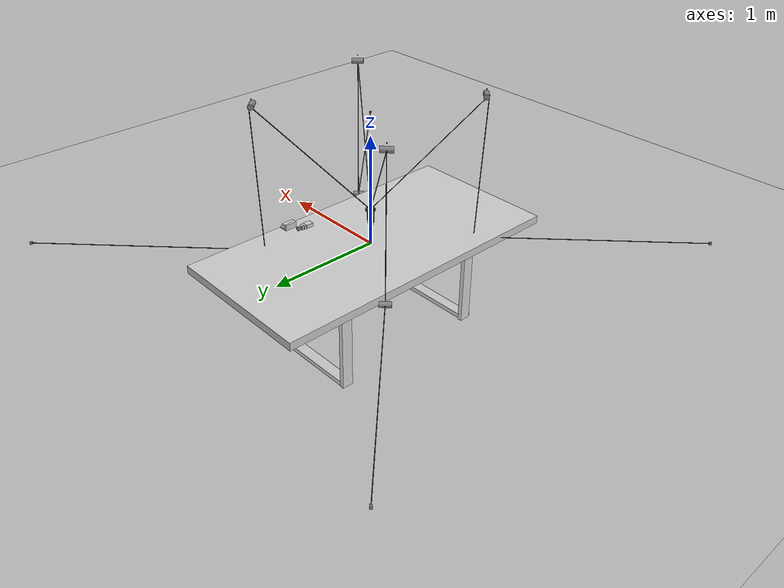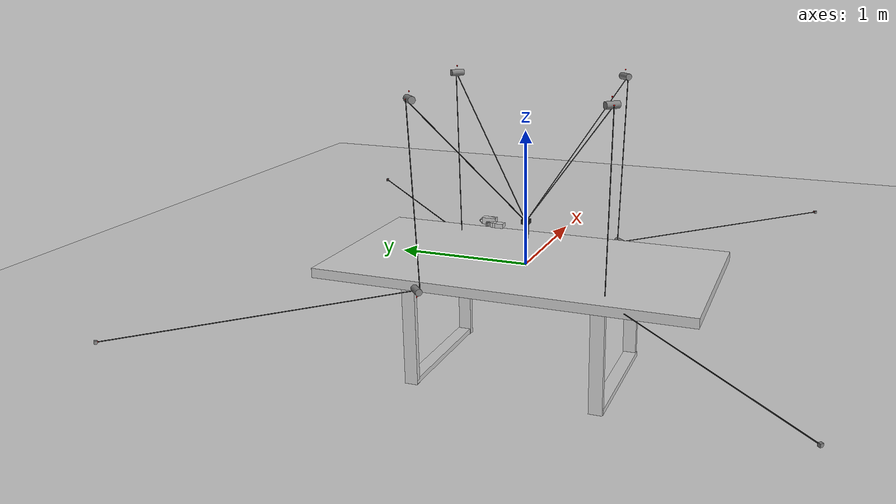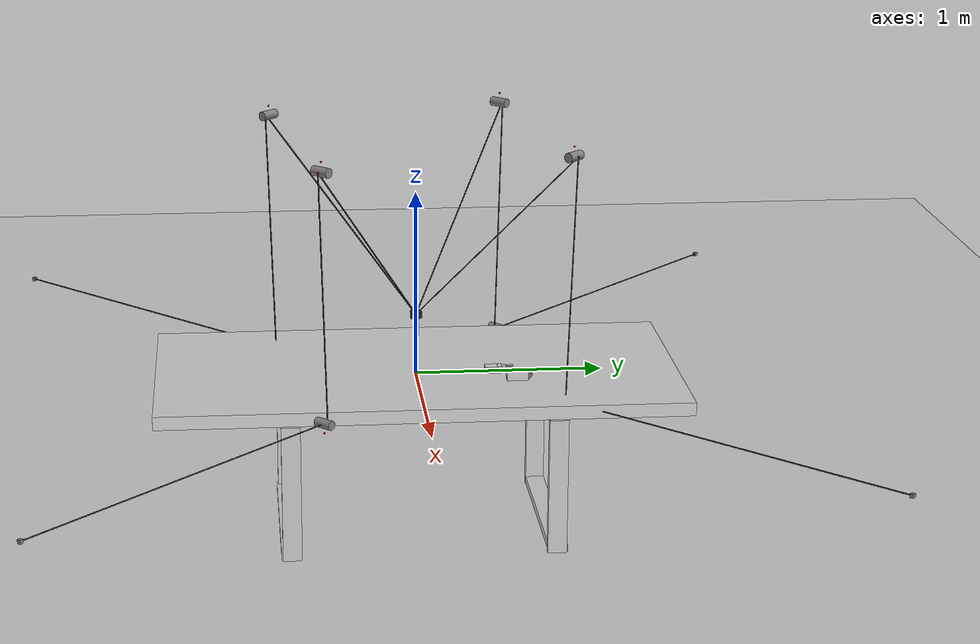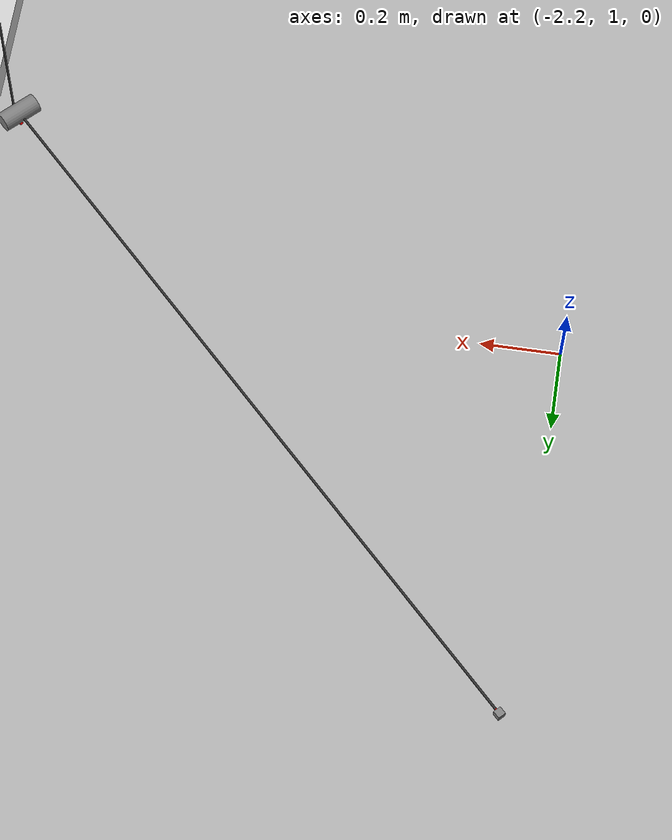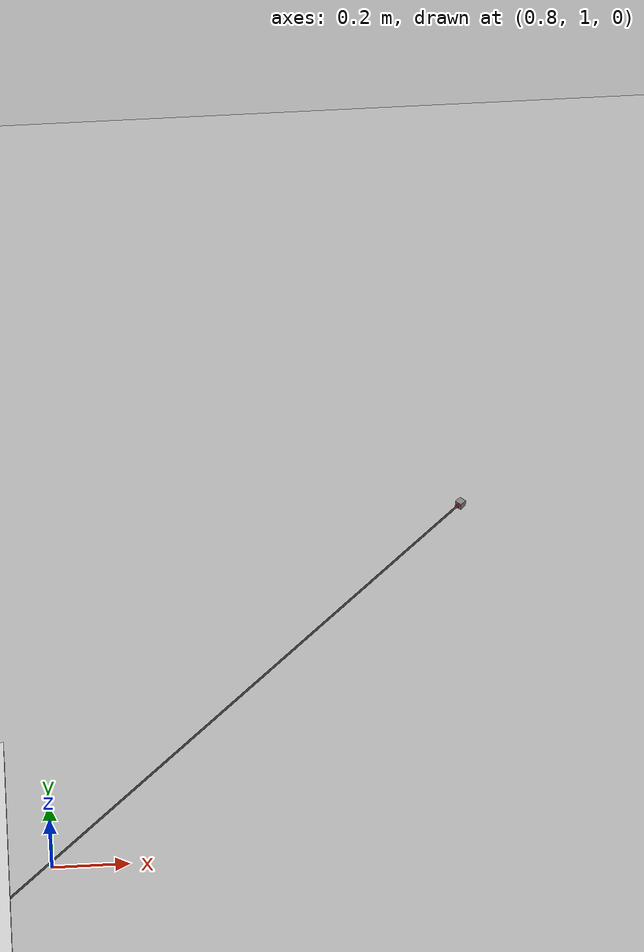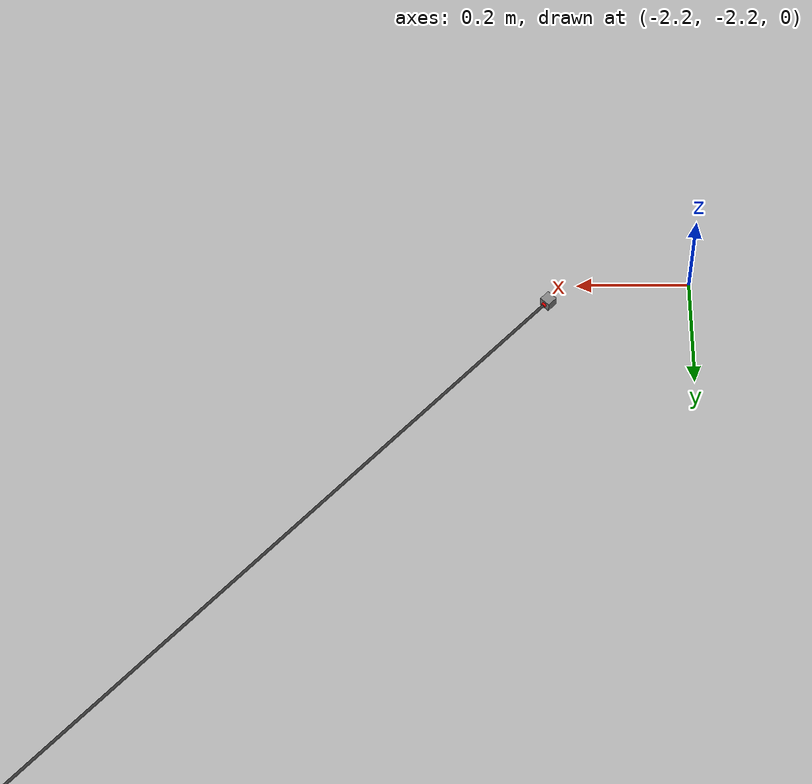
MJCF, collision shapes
<mujoco>
    <compiler autolimits="true"/>

    <!-- Set mesh/texture dirs for the SCENE only -->
    <compiler meshdir="/root/repo/CDPR_Dataset/cdpr_dataset/wrappers" texturedir="/root/repo/CDPR_Dataset/cdpr_dataset/wrappers"/>
    <include file="/root/repo/CDPR_Dataset/cdpr_dataset/wrappers/desk_zshift.xml"/>

    <!-- Reset to neutral (our CDPR uses primitives / absolute includes) -->
    <compiler meshdir="" texturedir=""/>

    <!-- CDPR rig -->
    <include file="/root/repo/CDPR_Dataset/cdpr_dataset/wrappers/cdpr_ee_override.xml"/>

    <!-- Placed LIBERO objects (assets already absolute) -->
    <include file="/root/repo/CDPR_Dataset/cdpr_dataset/wrappers/placed_0_ketchup.xml"/>
<include file="/root/repo/CDPR_Dataset/cdpr_dataset/wrappers/placed_1_milk.xml"/>
<include file="/root/repo/CDPR_Dataset/cdpr_dataset/wrappers/placed_2_orange_juice.xml"/>
    </mujoco>

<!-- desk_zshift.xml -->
<mujoco model="desk">
  <asset>
    <texture file="/root/repo/LIBERO/libero/libero/assets/scenes/desk/desk_texture.png" name="tex-desk" type="2d" />
    <material name="desk" reflectance="0.5" texrepeat="1 1" texture="tex-desk" texuniform="false" />
    <mesh file="/root/repo/LIBERO/libero/libero/assets/scenes/desk/visual/desk_vis.msh" name="desk_vis" scale="1.0 1.0 1.0" />
  </asset>
  <worldbody>
    <body pos="0.0 0.0 -0.85">
      <body name="object">
        <geom solimp="0.998 0.998 0.001" solref="0.001 1" density="100" friction="0.95 0.3 0.1" type="mesh" mesh="desk_vis" conaffinity="0" contype="0" group="1" material="desk" />
        <geom solimp="0.998 0.998 0.001" solref="0.001 1" density="100" friction="0.95 0.3 0.1" type="box" pos="-0.00000 0.00000 0.84929" quat="0.50000 -0.50000 0.50000 0.50000" size="0.03584 0.68946 1.39273" group="0" rgba="0.8 0.8 0.8 0.3" />
        <geom solimp="0.998 0.998 0.001" solref="0.001 1" density="100" friction="0.95 0.3 0.1" type="box" pos="-0.50048 -0.69064 0.39431" quat="0.00000 0.00000 1.00000 0.00000" size="0.02002 0.05031 0.39407" group="0" rgba="0.8 0.8 0.8 0.3" />
        <geom solimp="0.998 0.998 0.001" solref="0.001 1" density="100" friction="0.95 0.3 0.1" type="box" pos="0.49617 -0.69064 0.39431" quat="1.00000 -0.00000 -0.00000 -0.00000" size="0.02002 0.05031 0.39407" group="0" rgba="0.8 0.8 0.8 0.3" />
        <geom solimp="0.998 0.998 0.001" solref="0.001 1" density="100" friction="0.95 0.3 0.1" type="box" pos="0.49617 0.70968 0.39431" quat="0.00000 0.00000 1.00000 0.00000" size="0.02002 0.05032 0.39407" group="0" rgba="0.8 0.8 0.8 0.3" />
        <geom solimp="0.998 0.998 0.001" solref="0.001 1" density="100" friction="0.95 0.3 0.1" type="box" pos="-0.50048 0.71473 0.39431" quat="1.00000 -0.00000 -0.00000 -0.00000" size="0.02002 0.05031 0.39407" group="0" rgba="0.8 0.8 0.8 0.3" />
        <geom solimp="0.998 0.998 0.001" solref="0.001 1" density="100" friction="0.95 0.3 0.1" type="box" pos="-0.00488 0.71473 0.02528" quat="0.70811 0.00000 -0.70610 -0.00000" size="0.02002 0.05031 0.51262" group="0" rgba="0.8 0.8 0.8 0.3" />
        <geom solimp="0.998 0.998 0.001" solref="0.001 1" density="100" friction="0.95 0.3 0.1" type="box" pos="-0.00488 -0.69765 0.02528" quat="0.70811 0.00000 -0.70610 -0.00000" size="0.02002 0.05032 0.51262" group="0" rgba="0.8 0.8 0.8 0.3" />
      </body>
      <site rgba="0 0 0 0" size="0.005" pos="0 0 -0.06" name="bottom_site" />
      <site rgba="0 0 0 0" size="0.005" pos="0 0 0.04" name="top_site" />
      <site rgba="0 0 0 0" size="0.005" pos="0.025 0.025 0" name="horizontal_radius_site" />
    </body>
  </worldbody>
</mujoco>

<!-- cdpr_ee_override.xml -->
<mujoco>
  <compiler autolimits="true" />
  <default>
    <site type="sphere" rgba="1 0 0 1" size="0.005" />
    <tendon rgba="0.2 0.2 0.2 1" />
  </default>
  <visual>
    <headlight diffuse=".7 .7 .7" />
  </visual>
  <worldbody>
    <light name="side_light" pos="1.0 -1.0 2.0" dir="-1 1 -1" diffuse="0.6 0.6 0.6" specular="0.1 0.1 0.1" directional="true" castshadow="false" />
    <body name="rotor_1_up" pos="-0.535 -0.755 1.309" euler="90 45 0">
      <geom name="rotor_1_up" type="cylinder" size=".025 .05" />
      <site name="top_main_site_1" pos="-0.025 0.00001 0" />
      <site name="top_sidesite_1" pos="0 0.05 0" />
      <body name="rotor_1_down" pos="0 -1.309 0" euler="0 0 0">
        <geom name="rotor_1_down" type="cylinder" size=".025 .05" />
        <site name="bot_main_site_1" pos="0.025 -0.00001 0" />
        <site name="bot_sidesite_1" pos="0 -0.05 0" />
        <body name="slider_1" pos="-2 0 0">
          <inertial pos="0 0 0" mass="2" diaginertia="0.0001 0.0001 0.0001" />
          <joint name="slider_1" type="slide" axis="-1 0 0" damping="5" />
          <geom type="box" size="0.01 0.01 0.01" />
          <site name="slider_1" pos="0.01 0 0" />
        </body>
      </body>
    </body>
    <body name="rotor_2_up" pos="0.755 -0.525 1.309" euler="90 135 0">
      <geom name="rotor_2_up" type="cylinder" size=".025 .05" />
      <site name="top_main_site_2" pos="-0.025 0.00001 0" />
      <site name="top_sidesite_2" pos="0 0.05 0" />
      <body name="rotor_2_down" pos="0 -1.309 0" euler="0 0 0">
        <geom name="rotor_2_down" type="cylinder" size=".025 .05" />
        <site name="bot_main_site_2" pos="0.025 -0.00001 0" />
        <site name="bot_sidesite_2" pos="0 -0.05 0" />
        <body name="slider_2" pos="-2 0 0">
          <inertial pos="0 0 0" mass="2" diaginertia="0.0001 0.0001 0.0001" />
          <joint name="slider_2" type="slide" axis="-1 0 0" damping="5" />
          <geom type="box" size="0.01 0.01 0.01" />
          <site name="slider_2" pos="0.01 0 0" />
        </body>
      </body>
    </body>
    <body name="rotor_3_up" pos="0.535 0.755 1.309" euler="90 -135 0">
      <geom name="rotor_3_up" type="cylinder" size=".025 .05" />
      <site name="top_main_site_3" pos="-0.025 0.00001 0" />
      <site name="top_sidesite_3" pos="0 0.05 0" />
      <body name="rotor_3_down" pos="0 -1.309 0" euler="0 0 0">
        <geom name="rotor_3_down" type="cylinder" size=".025 .05" />
        <site name="bot_main_site_3" pos="0.025 -0.00001 0" />
        <site name="bot_sidesite_3" pos="0 -0.05 0" />
        <body name="slider_3" pos="-2 0 0">
          <inertial pos="0 0 0" mass="2" diaginertia="0.0001 0.0001 0.0001" />
          <joint name="slider_3" type="slide" axis="-1 0 0" damping="5" />
          <geom type="box" size="0.01 0.01 0.01" />
          <site name="slider_3" pos="0.01 0 0" />
        </body>
      </body>
    </body>
    <body name="rotor_4_up" pos="-0.755 0.525 1.309" euler="90  -45 0">
      <geom name="rotor_4_up" type="cylinder" size=".025 .05" />
      <site name="top_main_site_4" pos="-0.025 0.00001 0" />
      <site name="top_sidesite_4" pos="0 0.05 0" />
      <body name="rotor_4_down" pos="0 -1.309 0" euler="0 0 0">
        <geom name="rotor_4_down" type="cylinder" size=".025 .05" />
        <site name="bot_main_site_4" pos="0.025 -0.00001 0" />
        <site name="bot_sidesite_4" pos="0 -0.05 0" />
        <body name="slider_4" pos="-2 0 0">
          <inertial pos="0 0 0" mass="2" diaginertia="0.0001 0.0001 0.0001" />
          <joint name="slider_4" type="slide" axis="-1 0 0" damping="5" />
          <geom type="box" size="0.01 0.01 0.01" />
          <site name="slider_4" pos="0.01 0 0" />
        </body>
      </body>
    </body>
    <geom name="floor" type="plane" size="5 5 0.1" pos="0 0 -0.1" rgba="0.8 0.8 0.8 1" />
    <body name="ee_base" pos="0.0 0.0 0.25">
      <joint name="ee_free" type="free" damping="3" armature="0.002" />
      <inertial pos="0 0 0" mass="1.2" diaginertia="0.02 0.02 0.02" />
      <site name="topcenter" pos="0 0 0.08" size="0.006" rgba="0 0 1 1" />
      <body name="yaw_frame" pos="0 0 0">
        <inertial pos="0 0 0" mass="0.15" diaginertia="0.0006 0.0006 0.0006" />
        <joint name="ee_yaw" type="hinge" axis="0 0 1" limited="true" range="-3.1416 3.1416" damping="0.4" />
        <body name="ee_stab" pos="0 0 0">
          <inertial pos="0 0 0" mass="0.6" diaginertia="0.005 0.005 0.005" />
          <joint name="ee_ball" type="ball" damping="6" stiffness="80" armature="0.02" limited="false" />
          <body name="camera_body" pos="0 0.05 0.07">
            <camera name="ee_camera" mode="fixed" fovy="60" />
          </body>
          <body name="ee_platform" pos="0 0 0.08">
            <inertial pos="0 0 0" mass="0.35" diaginertia="0.003 0.003 0.003" />
            <geom name="palm" type="box" size="0.03 0.03 0.015" rgba="0.15 0.15 0.15 1" contype="1" conaffinity="1" />
            <body name="finger_left_car" pos="0.025 0 0">
              <inertial pos="0 0 0" mass="0.08" diaginertia="0.0002 0.0002 0.00015" />
              <joint name="finger_l" type="slide" axis="1 0 0" limited="true" range="0 0.05" damping="3.0" />
              <geom name="finger_l_link" type="box" size="0.012 0.01 0.055" pos="0 0 -0.055" rgba="0.2 0.2 0.2 1" contype="1" conaffinity="1" friction="1.5 0.02 0.01" />
              <geom name="finger_l_tip" type="capsule" fromto="0 0 -0.11  0 0 -0.135" size="0.008" rgba="0.2 0.2 0.2 1" contype="1" conaffinity="1" friction="1.5 0.02 0.01" />
            </body>
            <body name="finger_right_car" pos="-0.025 0 0">
              <inertial pos="0 0 0" mass="0.08" diaginertia="0.0002 0.0002 0.00015" />
              <joint name="finger_r" type="slide" axis="-1 0 0" limited="true" range="0 0.05" damping="3.0" />
              <geom name="finger_r_link" type="box" size="0.012 0.01 0.055" pos="0 0 -0.055" rgba="0.2 0.2 0.2 1" contype="1" conaffinity="1" friction="1.5 0.02 0.01" />
              <geom name="finger_r_tip" type="capsule" fromto="0 0 -0.11  0 0 -0.135" size="0.008" rgba="0.2 0.2 0.2 1" contype="1" conaffinity="1" friction="1.5 0.02 0.01" />
            </body>
          </body>
        </body>
      </body>
    </body>
  </worldbody>
  <equality>
    <joint joint1="finger_l" joint2="finger_r" polycoef="0 1 0 0 0" />
  </equality>
  <tendon>
    <spatial name="rope_1" limited="true" range="0 4.235" stiffness="0" damping="0">
      <site site="topcenter" />
      <geom geom="rotor_1_up" sidesite="top_sidesite_1" />
      <site site="top_main_site_1" />
      <site site="bot_main_site_1" />
      <geom geom="rotor_1_down" sidesite="bot_sidesite_1" />
      <site site="slider_1" />
    </spatial>
    <spatial name="rope_2" limited="true" range="0 4.235" stiffness="0" damping="0">
      <site site="topcenter" />
      <geom geom="rotor_2_up" sidesite="top_sidesite_2" />
      <site site="top_main_site_2" />
      <site site="bot_main_site_2" />
      <geom geom="rotor_2_down" sidesite="bot_sidesite_2" />
      <site site="slider_2" />
    </spatial>
    <spatial name="rope_3" limited="true" range="0 4.235" stiffness="0" damping="0">
      <site site="topcenter" />
      <geom geom="rotor_3_up" sidesite="top_sidesite_3" />
      <site site="top_main_site_3" />
      <site site="bot_main_site_3" />
      <geom geom="rotor_3_down" sidesite="bot_sidesite_3" />
      <site site="slider_3" />
    </spatial>
    <spatial name="rope_4" limited="true" range="0 4.235" stiffness="0" damping="0">
      <site site="topcenter" />
      <geom geom="rotor_4_up" sidesite="top_sidesite_4" />
      <site site="top_main_site_4" />
      <site site="bot_main_site_4" />
      <geom geom="rotor_4_down" sidesite="bot_sidesite_4" />
      <site site="slider_4" />
    </spatial>
  </tendon>
  <actuator>
    <position name="slider_1_pos" joint="slider_1" ctrlrange="-4.5 4.5" kp="200" kv="80" />
    <position name="slider_2_pos" joint="slider_2" ctrlrange="-4.5 4.5" kp="200" kv="80" />
    <position name="slider_3_pos" joint="slider_3" ctrlrange="-4.5 4.5" kp="200" kv="80" />
    <position name="slider_4_pos" joint="slider_4" ctrlrange="-4.5 4.5" kp="200" kv="80" />
    <position name="act_ee_yaw" joint="ee_yaw" kp="30" ctrlrange="-3.1416 3.1416" />
    <position name="act_gripper" joint="finger_l" kp="300" ctrlrange="0 0.06" />
  </actuator>
  <sensor>
    <framepos objtype="camera" objname="ee_camera" />
    <framequat objtype="camera" objname="ee_camera" />
  </sensor>
</mujoco>

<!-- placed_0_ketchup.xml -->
<mujoco>
  <compiler autolimits="true" />
  <default>
    <geom density="1200" />
  </default>
  <asset>
    <texture file="/root/repo/LIBERO/libero/libero/assets/stable_hope_objects/ketchup/texture_map.png" name="p0_tex-textured" type="2d" />
    <material name="p0_textured" reflectance="0.5" texrepeat="1 1" texture="p0_tex-textured" texuniform="false" />
    <mesh file="/root/repo/LIBERO/libero/libero/assets/stable_hope_objects/ketchup/visual/textured_vis.msh" name="p0_textured_vis" scale="0.01 0.01 0.01" />
  </asset>
  <worldbody>
    <body pos="0.4 0.4 0.15" quat="1.0 0.0 0.0 0.0">
      <body name="p0_object">
        <geom solimp="0.998 0.998 0.001" solref="0.001 1" density="100" friction="0.95 0.3 0.1" type="mesh" mesh="p0_textured_vis" conaffinity="0" contype="0" group="1" material="p0_textured" />
        <geom solimp="0.998 0.998 0.001" solref="0.001 1" density="100" friction="0.95 0.3 0.1" type="box" pos="0.00045 -0.03935 0.00079" quat="0.50000 0.50000 0.50000 -0.50000" size="0.01695 0.02811 0.03307" group="0" rgba="0.8 0.8 0.8 0.3" />
        <geom solimp="0.998 0.998 0.001" solref="0.001 1" density="100" friction="0.95 0.3 0.1" type="box" pos="0.00045 0.00369 0.00079" quat="0.50000 0.50000 -0.50000 -0.50000" size="0.01126 0.01834 0.02393" group="0" rgba="0.8 0.8 0.8 0.3" />
        <geom solimp="0.998 0.998 0.001" solref="0.001 1" density="100" friction="0.95 0.3 0.1" type="box" pos="0.00045 0.02513 0.00079" quat="0.50000 0.50000 -0.50000 -0.50000" size="0.01126 0.01834 0.01869" group="0" rgba="0.8 0.8 0.8 0.3" />
        <geom solimp="0.998 0.998 0.001" solref="0.001 1" density="100" friction="0.95 0.3 0.1" type="box" pos="0.00045 0.05471 0.00079" quat="0.00000 -0.00000 0.70711 -0.70711" size="0.01032 0.01414 0.01848" group="0" rgba="0.8 0.8 0.8 0.3" />
        <geom solimp="0.998 0.998 0.001" solref="0.001 1" density="100" friction="0.95 0.3 0.1" type="box" pos="0.01368 0.05471 0.00079" quat="0.70711 0.70711 0.00000 -0.00000" size="0.00292 0.00405 0.01848" group="0" rgba="0.8 0.8 0.8 0.3" />
        <geom solimp="0.998 0.998 0.001" solref="0.001 1" density="100" friction="0.95 0.3 0.1" type="box" pos="-0.01322 0.05471 0.00079" quat="0.00000 0.00000 0.70711 0.70711" size="0.00315 0.00460 0.01848" group="0" rgba="0.8 0.8 0.8 0.3" />
        <geom solimp="0.998 0.998 0.001" solref="0.001 1" density="100" friction="0.95 0.3 0.1" type="box" pos="0.00008 0.05471 -0.01554" quat="0.50000 -0.50000 0.50000 0.50000" size="0.00209 0.00685 0.01848" group="0" rgba="0.8 0.8 0.8 0.3" />
        <geom solimp="0.998 0.998 0.001" solref="0.001 1" density="100" friction="0.95 0.3 0.1" type="box" pos="0.00002 0.05471 0.01682" quat="0.50000 -0.50000 0.50000 0.50000" size="0.00186 0.00740 0.01848" group="0" rgba="0.8 0.8 0.8 0.3" />
        <geom solimp="0.998 0.998 0.001" solref="0.001 1" density="100" friction="0.95 0.3 0.1" type="box" pos="0.01333 0.05471 0.00901" quat="0.70711 0.70711 0.00000 -0.00000" size="0.00259 0.00413 0.01848" group="0" rgba="0.8 0.8 0.8 0.3" />
        <geom solimp="0.998 0.998 0.001" solref="0.001 1" density="100" friction="0.95 0.3 0.1" type="box" pos="0.01333 0.05471 -0.00727" quat="0.00000 0.00000 0.70711 0.70711" size="0.00259 0.00392 0.01848" group="0" rgba="0.8 0.8 0.8 0.3" />
        <geom solimp="0.998 0.998 0.001" solref="0.001 1" density="100" friction="0.95 0.3 0.1" type="box" pos="-0.01254 0.05471 -0.00799" quat="0.00000 0.00000 0.70711 0.70711" size="0.00259 0.00405 0.01848" group="0" rgba="0.8 0.8 0.8 0.3" />
        <geom solimp="0.998 0.998 0.001" solref="0.001 1" density="100" friction="0.95 0.3 0.1" type="box" pos="-0.01259 0.05471 0.00929" quat="0.00000 0.00000 0.70711 0.70711" size="0.00259 0.00380 0.01848" group="0" rgba="0.8 0.8 0.8 0.3" />
      </body>
      <site rgba="0 0 0 0" size="0.005" pos="0 0 -0.06" name="p0_bottom_site" />
      <site rgba="0 0 0 0" size="0.005" pos="0 0 0.04" name="p0_top_site" />
      <site rgba="0 0 0 0" size="0.005" pos="0.025 0.025 0" name="p0_horizontal_radius_site" />
      <freejoint />
    </body>
  </worldbody>
</mujoco>

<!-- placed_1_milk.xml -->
<mujoco>
  <compiler autolimits="true" />
  <default>
    <geom density="1200" />
  </default>
  <asset>
    <texture file="/root/repo/LIBERO/libero/libero/assets/stable_hope_objects/milk/texture_map.png" name="p1_tex-textured" type="2d" />
    <material name="p1_textured" reflectance="0.5" texrepeat="1 1" texture="p1_tex-textured" texuniform="false" />
    <mesh file="/root/repo/LIBERO/libero/libero/assets/stable_hope_objects/milk/visual/textured_vis.msh" name="p1_textured_vis" scale="0.0075 0.0075 0.0075" />
  </asset>
  <worldbody>
    <body pos="0.5 0.5 0.15" quat="1.0 0.0 0.0 0.0">
      <body name="p1_object">
        <geom solimp="0.998 0.998 0.001" solref="0.001 1" density="100" friction="0.95 0.3 0.1" type="mesh" mesh="p1_textured_vis" conaffinity="0" contype="0" group="1" material="p1_textured" />
        <geom solimp="0.998 0.998 0.001" solref="0.001 1" density="100" friction="0.95 0.3 0.1" type="box" pos="0.00037 -0.01500 0.00000" quat="0.70711 0.70711 0.00000 -0.00000" size="0.02625 0.02625 0.05475" group="0" rgba="0.8 0.8 0.8 0.3" />
        <geom solimp="0.998 0.998 0.001" solref="0.001 1" density="100" friction="0.95 0.3 0.1" type="box" pos="0.00005 0.04784 0.01352" quat="0.28687 0.64630 -0.28687 -0.64630" size="0.00218 0.01381 0.02631" group="0" rgba="0.8 0.8 0.8 0.3" />
        <geom solimp="0.998 0.998 0.001" solref="0.001 1" density="100" friction="0.95 0.3 0.1" type="box" pos="0.00005 0.04784 -0.01344" quat="0.64203 0.29630 0.64203 0.29630" size="0.00218 0.01381 0.02631" group="0" rgba="0.8 0.8 0.8 0.3" />
        <geom solimp="0.998 0.998 0.001" solref="0.001 1" density="100" friction="0.95 0.3 0.1" type="box" pos="0.00005 0.05849 0.00005" quat="0.50000 0.50000 -0.50000 -0.50000" size="0.00295 0.00348 0.02650" group="0" rgba="0.8 0.8 0.8 0.3" />
      </body>
      <site rgba="0 0 0 0" size="0.005" pos="0 0 -0.06" name="p1_bottom_site" />
      <site rgba="0 0 0 0" size="0.005" pos="0 0 0.04" name="p1_top_site" />
      <site rgba="0 0 0 0" size="0.005" pos="0.03 0.03 0" name="p1_horizontal_radius_site" />
      <freejoint />
    </body>
  </worldbody>
</mujoco>

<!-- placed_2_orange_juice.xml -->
<mujoco>
  <compiler autolimits="true" />
  <default>
    <geom density="1200" />
  </default>
  <asset>
    <texture file="/root/repo/LIBERO/libero/libero/assets/stable_hope_objects/orange_juice/texture_map.png" name="p2_tex-textured" type="2d" />
    <material name="p2_textured" reflectance="0.5" texrepeat="1 1" texture="p2_tex-textured" texuniform="false" />
    <mesh file="/root/repo/LIBERO/libero/libero/assets/stable_hope_objects/orange_juice/visual/textured_vis.msh" name="p2_textured_vis" scale="0.0075 0.0075 0.0075" />
  </asset>
  <worldbody>
    <body pos="0.5 0.5 0.15" quat="1.0 0.0 0.0 0.0">
      <body name="p2_object">
        <geom solimp="0.998 0.998 0.001" solref="0.001 1" density="100" friction="0.95 0.3 0.1" type="mesh" mesh="p2_textured_vis" conaffinity="0" contype="0" group="1" material="p2_textured" />
        <geom solimp="0.998 0.998 0.001" solref="0.001 1" density="100" friction="0.95 0.3 0.1" type="box" pos="-0.00037 -0.01500 0.00000" quat="0.70711 0.70711 0.00000 -0.00000" size="0.02625 0.02625 0.05475" group="0" rgba="0.8 0.8 0.8 0.3" />
        <geom solimp="0.998 0.998 0.001" solref="0.001 1" density="100" friction="0.95 0.3 0.1" type="box" pos="-0.00005 0.04784 -0.01352" quat="0.28687 -0.64630 -0.28687 0.64630" size="0.00218 0.01381 0.02631" group="0" rgba="0.8 0.8 0.8 0.3" />
        <geom solimp="0.998 0.998 0.001" solref="0.001 1" density="100" friction="0.95 0.3 0.1" type="box" pos="-0.00005 0.04784 0.01344" quat="0.29630 0.64203 -0.29630 -0.64203" size="0.00218 0.01381 0.02631" group="0" rgba="0.8 0.8 0.8 0.3" />
        <geom solimp="0.998 0.998 0.001" solref="0.001 1" density="100" friction="0.95 0.3 0.1" type="box" pos="-0.00005 0.05849 -0.00005" quat="0.50000 0.50000 -0.50000 -0.50000" size="0.00295 0.00348 0.02650" group="0" rgba="0.8 0.8 0.8 0.3" />
      </body>
      <site rgba="0 0 0 0" size="0.005" pos="0 0 -0.06" name="p2_bottom_site" />
      <site rgba="0 0 0 0" size="0.005" pos="0 0 0.04" name="p2_top_site" />
      <site rgba="0 0 0 0" size="0.005" pos="0.025 0.025 0" name="p2_horizontal_radius_site" />
      <freejoint />
    </body>
  </worldbody>
</mujoco>
